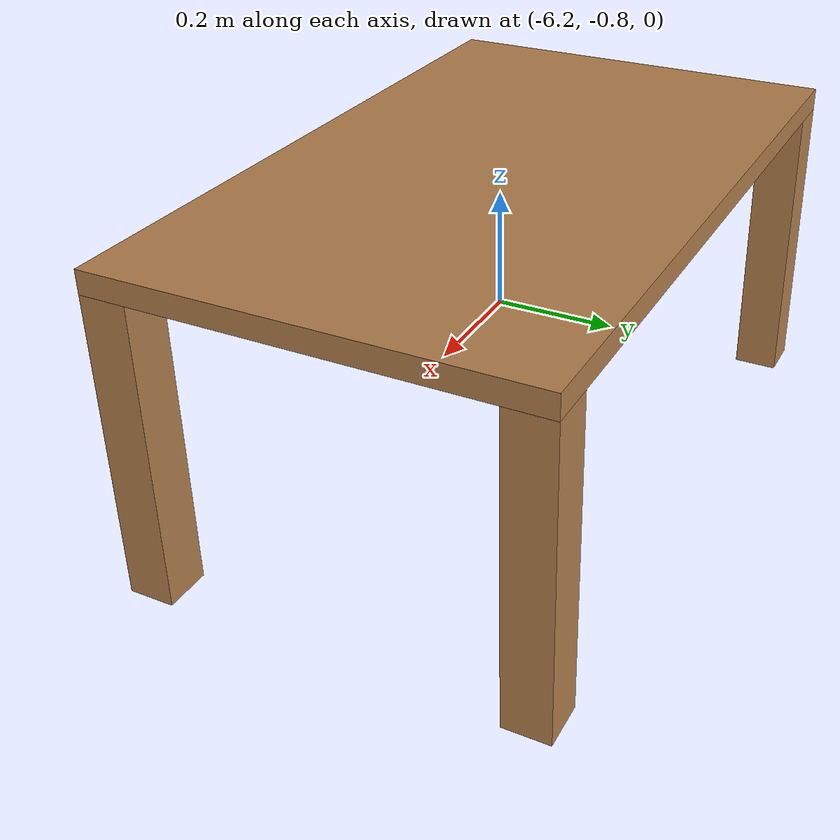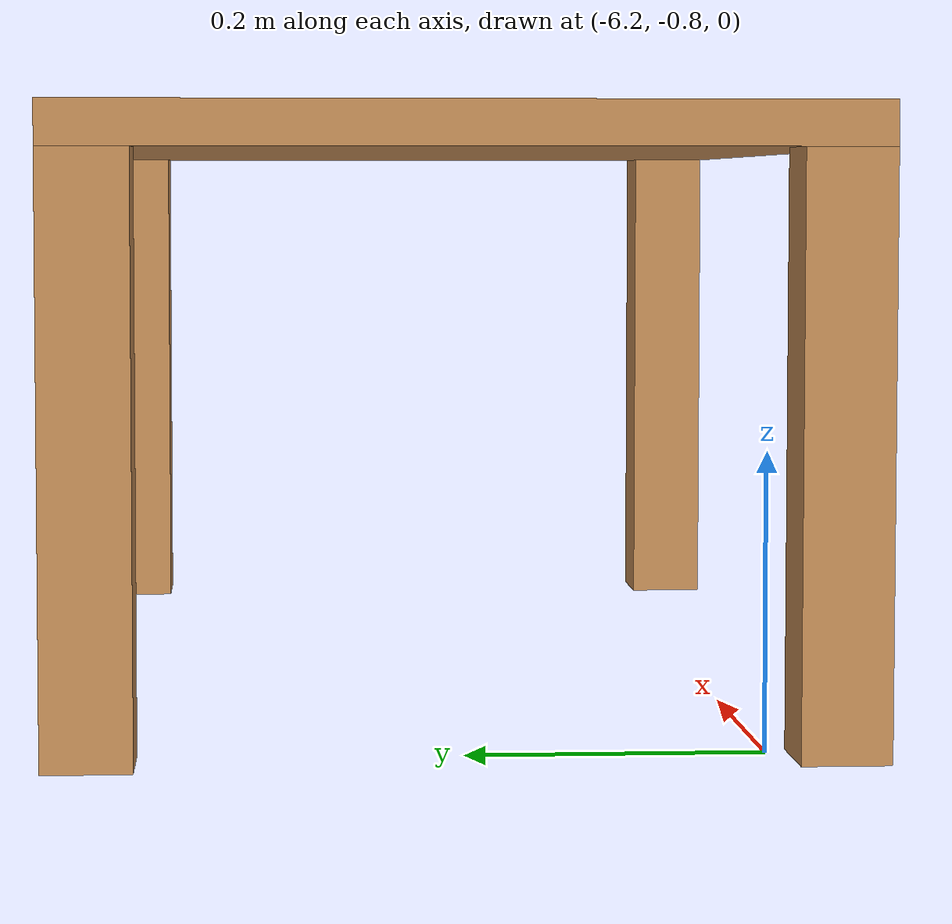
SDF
<?xml version="1.0" ?>
<sdf version='1.4'>
  <model name='mesa_salon'>
    <link name='mesa_link'>
      <pose>0 0 0 0 -0 0</pose>
      <inertial>
        <pose>1.38778e-17 3.46945e-18 0.3075 0 -0 0</pose>
        <mass>4</mass>
        <inertia>
          <ixx>0.666275</ixx>
          <ixy>1.92593e-34</ixy>
          <ixz>1.70697e-17</ixz>
          <iyy>0.899025</iyy>
          <iyz>4.26742e-18</iyz>
          <izz>0.97285</izz>
        </inertia>
      </inertial>
      <collision name='mesa_link_collision'>
        <pose>0 0 0.415 0 -0 0</pose>
        <geometry>
          <box>
            <size>0.9 0.55 0.03</size>
          </box>
        </geometry>
        <surface>
          <contact>
            <ode/>
          </contact>
          <friction>
            <ode>
              <mu>100</mu>
              <mu2>100</mu2>
            </ode>
          </friction>
          <bounce/>
        </surface>
        <max_contacts>10</max_contacts>
      </collision>
      <collision name='mesa_link_collision_pata_1_link'>
        <pose>0.42 0.245 0.2 0 -0 0</pose>
        <geometry>
          <box>
            <size>0.06 0.06 0.4</size>
          </box>
        </geometry>
        <surface>
          <contact>
            <ode/>
          </contact>
          <friction>
            <ode>
              <mu>100</mu>
              <mu2>100</mu2>
            </ode>
          </friction>
          <bounce/>
        </surface>
        <surface>
          <contact>
            <ode/>
          </contact>
          <friction>
            <ode>
              <mu>100</mu>
              <mu2>100</mu2>
            </ode>
          </friction>
        </surface>
        <max_contacts>10</max_contacts>
      </collision>
      <collision name='mesa_link_collision_pata_2_link'>
        <pose>0.42 -0.245 0.2 0 -0 0</pose>
        <geometry>
          <box>
            <size>0.06 0.06 0.4</size>
          </box>
        </geometry>
        <surface>
          <contact>
            <ode/>
          </contact>
          <friction>
            <ode>
              <mu>100</mu>
              <mu2>100</mu2>
            </ode>
          </friction>
          <bounce/>
        </surface>
        <surface>
          <contact>
            <ode/>
          </contact>
          <friction>
            <ode>
              <mu>100</mu>
              <mu2>100</mu2>
            </ode>
          </friction>
        </surface>
        <max_contacts>10</max_contacts>
      </collision>
      <collision name='mesa_link_collision_pata_3_link'>
        <pose>-0.42 -0.245 0.2 0 -0 0</pose>
        <geometry>
          <box>
            <size>0.06 0.06 0.4</size>
          </box>
        </geometry>
        <surface>
          <contact>
            <ode/>
          </contact>
          <friction>
            <ode>
              <mu>100</mu>
              <mu2>100</mu2>
            </ode>
          </friction>
          <bounce/>
        </surface>
        <surface>
          <contact>
            <ode/>
          </contact>
          <friction>
            <ode>
              <mu>100</mu>
              <mu2>100</mu2>
            </ode>
          </friction>
        </surface>
        <max_contacts>10</max_contacts>
      </collision>
      <collision name='mesa_link_collision_pata_4_link'>
        <pose>-0.42 0.245 0.2 0 -0 0</pose>
        <geometry>
          <box>
            <size>0.06 0.06 0.4</size>
          </box>
        </geometry>
        <surface>
          <contact>
            <ode/>
          </contact>
          <friction>
            <ode>
              <mu>100</mu>
              <mu2>100</mu2>
            </ode>
          </friction>
          <bounce/>
        </surface>
        <surface>
          <contact>
            <ode/>
          </contact>
          <friction>
            <ode>
              <mu>100</mu>
              <mu2>100</mu2>
            </ode>
          </friction>
        </surface>
        <max_contacts>10</max_contacts>
      </collision>
      <visual name='mesa_link_visual'>
        <pose>0 0 0.415 0 -0 0</pose>
        <geometry>
          <box>
            <size>0.9 0.55 0.03</size>
          </box>
        </geometry>
        <material>
          <script>
            <name>Gazebo/Wood</name>
            <uri>__default__</uri>
          </script>
        </material>
      </visual>
      <visual name='mesa_link_visual_pata_1_link'>
        <pose>0.42 0.245 0.2 0 -0 0</pose>
        <geometry>
          <box>
            <size>0.06 0.06 0.4</size>
          </box>
        </geometry>
        <material>
          <script>
            <name>Gazebo/Wood</name>
            <uri>__default__</uri>
          </script>
        </material>
      </visual>
      <visual name='mesa_link_visual_pata_2_link'>
        <pose>0.42 -0.245 0.2 0 -0 0</pose>
        <geometry>
          <box>
            <size>0.06 0.06 0.4</size>
          </box>
        </geometry>
        <material>
          <script>
            <name>Gazebo/Wood</name>
            <uri>__default__</uri>
          </script>
        </material>
      </visual>
      <visual name='mesa_link_visual_pata_3_link'>
        <pose>-0.42 -0.245 0.2 0 -0 0</pose>
        <geometry>
          <box>
            <size>0.06 0.06 0.4</size>
          </box>
        </geometry>
        <material>
          <script>
            <name>Gazebo/Wood</name>
            <uri>__default__</uri>
          </script>
        </material>
      </visual>
      <visual name='mesa_link_visual_pata_4_link'>
        <pose>-0.42 0.245 0.2 0 -0 0</pose>
        <geometry>
          <box>
            <size>0.06 0.06 0.4</size>
          </box>
        </geometry>
        <material>
          <script>
            <name>Gazebo/Wood</name>
            <uri>__default__</uri>
          </script>
        </material>
      </visual>
      <velocity_decay>
        <linear>0</linear>
        <angular>0</angular>
      </velocity_decay>
      <velocity_decay>
        <linear>0</linear>
        <angular>0</angular>
      </velocity_decay>
      <velocity_decay>
        <linear>0</linear>
        <angular>0</angular>
      </velocity_decay>
      <velocity_decay>
        <linear>0</linear>
        <angular>0</angular>
      </velocity_decay>
      <gravity>1</gravity>
      <velocity_decay>
        <linear>0</linear>
        <angular>0</angular>
      </velocity_decay>
      <self_collide>1</self_collide>
      <kinematic>0</kinematic>
    </link>
    <pose>-5.8 -0.6 0 0 -0 0</pose>
    <static>0</static>
  </model>
</sdf>
